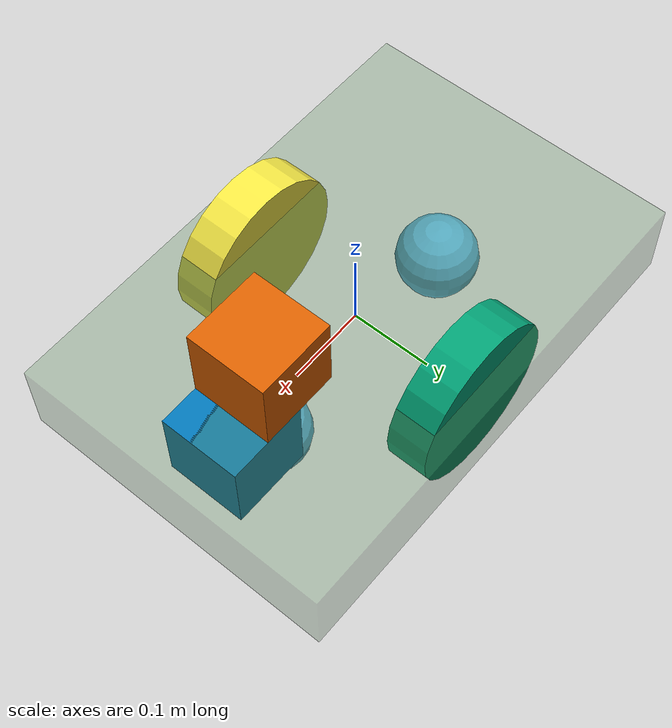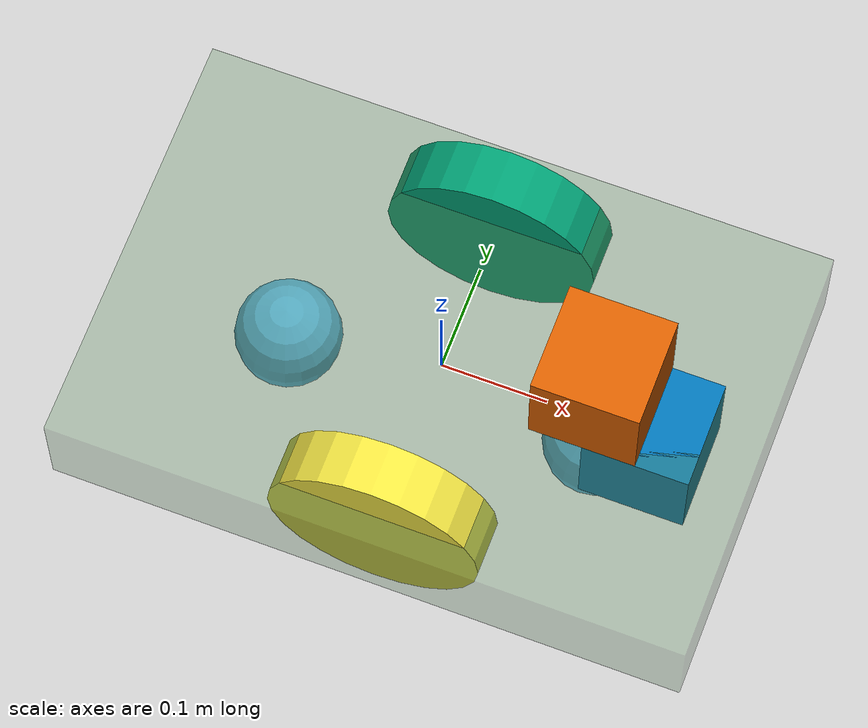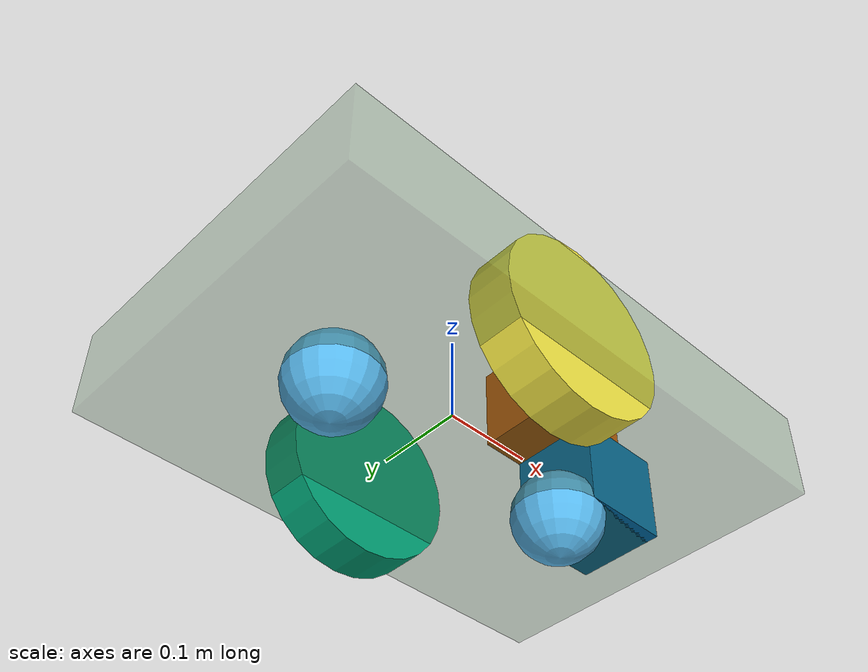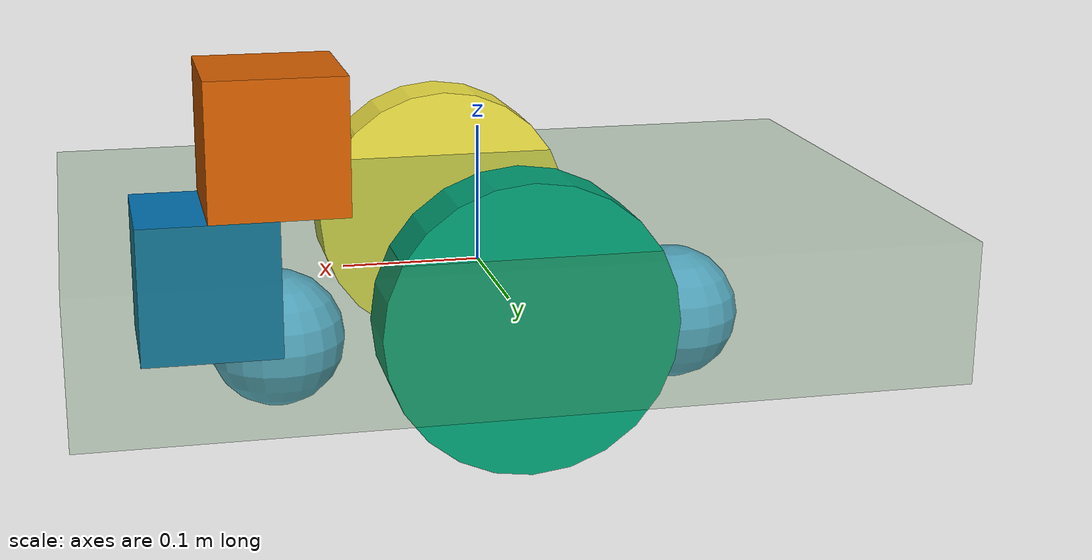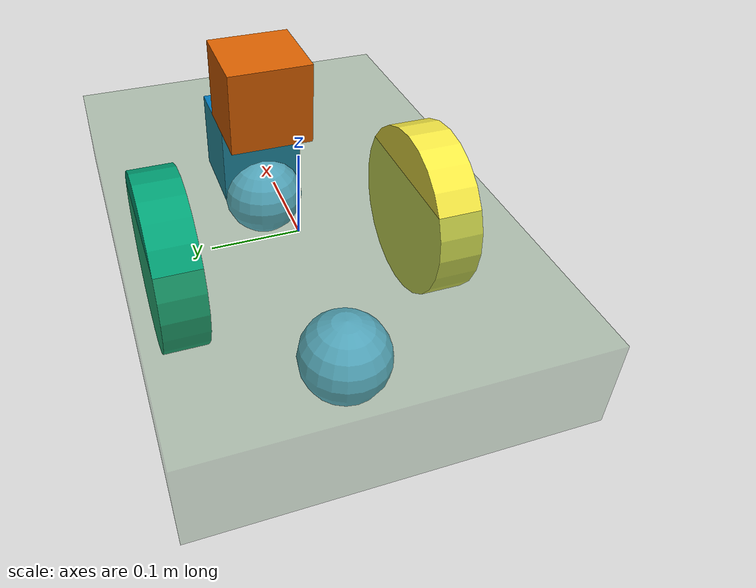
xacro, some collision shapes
<?xml version="1.0"?>

<robot name="my_robot" xmlns:xacro="http://www.ros.org/wiki/xacro">

  <xacro:include filename="$(find my_robot)/urdf/my_robot.gazebo"/>

  <link name="robot_footprint"></link>

  <joint name="robot_footprint_joint" type="fixed">
    <origin xyz="0 0 0" rpy="0 0 0" />
    <parent link="robot_footprint"/>
    <child link="chassis" />
  </joint>

  <link name='chassis'>
    <pose>0 0 0.1 0 0 0</pose>

    <inertial>
    <mass value="20.0"/>
      <origin xyz="0 0 0" rpy="0 0 0"/>
      <inertia
        ixx="0.1" ixy="0" ixz="0"
        iyy="0.1" iyz="0"
        izz="0.1"
      />
    </inertial>

    <collision name='collision'>
      <origin xyz="0 0 0" rpy="0 0 0"/>
      <geometry>
        <box size=".6 .4 .1"/>
      </geometry>
    </collision>

    <visual name='chassis_visual'>
      <origin xyz="0 0 0" rpy="0 0 0"/>
      <geometry>
        <box size=".6 .4 .1"/>
      </geometry>
      <material name='chassis_color'>
  	<color rgba="0.3 .5 0.3 0.3"/>
      </material>
    </visual>

    <collision name='back_caster_collision'>
      <origin xyz="-0.15 0 -0.05" rpy="0 0 0"/>
      <geometry>
        <sphere radius="0.0499"/>
      </geometry>
    </collision>

    <visual name='back_caster_visual'>
      <origin xyz="-0.15 0 -0.05" rpy="0 0 0"/>
      <geometry>
        <sphere radius="0.05"/>
      </geometry>
    </visual>

    <collision name='front_caster_collision'>
      <origin xyz="0.15 0 -0.05" rpy="0 0 0"/>
      <geometry>
        <sphere radius="0.0499"/>
      </geometry>
    </collision>

    <visual name='front_caster_visual'>
      <origin xyz="0.15 0 -0.05" rpy="0 0 0"/>
      <geometry>
        <sphere radius="0.05"/>
      </geometry>
    </visual>

  </link>

  <link name="left_wheel">
    <pose>0 0 0.1 0 0 0</pose>

    <inertial>
      <mass value="5"/>
      <origin xyz="0 0 0" rpy="0 1.5707 1.5707"/>
      <inertia
        ixx="0.1" ixy="0" ixz="0"
        iyy="0.1" iyz="0"
        izz="0.1"
      />
    </inertial>

    <visual name="left_wheel_visual">
      <origin xyz="0 0 0" rpy="0 1.5707 1.5707"/>
      <geometry>
        <cylinder radius="0.1" length="0.05"/>
      </geometry>
    </visual>

    <collision name="left_wheel_collision">
      <origin xyz="0 0 0" rpy="0 1.5707 1.5707"/>
      <geometry>
        <cylinder radius="0.1" length="0.05"/>
      </geometry>
    </collision>
  </link>

  <link name="right_wheel">
    <pose>0 0 -0.1 0 0 0</pose>

    <inertial>
      <mass value="5"/>
      <origin xyz="0 0 0" rpy="0 1.5707 1.5707"/>
      <inertia
        ixx="0.1" ixy="0" ixz="0"
        iyy="0.1" iyz="0"
        izz="0.1"
      />
    </inertial>

    <visual name="right_wheel_visual">
      <origin xyz="0 0 0" rpy="0 1.5707 1.5707"/>
      <geometry>
        <cylinder radius="0.1" length="0.05"/>
      </geometry>
    </visual>

    <collision name="right_wheel_collision">
      <orgin xyz="0 0 0 " rpy="0 1.5707 1.5707"/>
      <geometry>
        <cylinder radius="0.1" length="0.05"/>
      </geometry>
    </collision>
  </link>

  <joint type="continuous" name="left_wheel_hinge">
    <origin xyz="0 0.15 0" rpy="0 0 0"/>
    <child link="left_wheel"/>
    <parent link="chassis"/>
    <axis xyz="0 1 0" rpy="0 0 0"/>
    <limit effort="10000" velocity="1000"/>
    <dynamics damping="1.0" friction="1.0"/>
  </joint>

  <joint type="continuous" name="right_wheel_hinge">
    <origin xyz="0 -0.15 0" rpy="0 0 0"/>
    <child link="right_wheel"/>
    <parent link="chassis"/>
    <axis xyz="0 1 0" rpy="0 0 0"/>
    <limit effort="10000" velocity="1000"/>
    <dynamics damping="1.0" friction="1.0"/>
  </joint>

  <link name="camera">

    <inertial>
      <mass value="0.1"/>
      <origin xyz="0 0 0" rpy="0 0 0"/>
      <inertia
        ixx="1e-6" ixy="0" ixz="0"
        iyy="1e-6" iyz="0"
        izz="1e-6"
      />
    </inertial>

    <collision name='camera_collision'>
      <origin xyz="0 0 0" rpy="0 0 0"/>
      <geometry>
        <box size="0.1 0.1 0.1"/>
      </geometry>
      <box_inertia m="0.1" x="0.05" y="0.05" z="0.05"/>
    </collision>

    <visual name='camera_visual'>
      <origin xyz="0 0 0" rpy="0 0 0"/>
      <geometry>
        <box size="0.1 0.1 0.1"/>
      </geometry>
      <box_inertia m="0.1" x="0.05" y="0.05" z="0.05"/>
    </visual>

  </link>

  <joint type="fixed" name="camera_joint">
    <origin xyz="0.2 0 0" rpy="0 0 0"/>
    <child link="camera"/>
    <parent link="chassis"/>
    <axis xyz="0 1 0"/>
  </joint>

  <link name="hokuyo">

    <inertial>
      <mass value="1e-5"/>
      <origin xyz="0 0 0" rpy="0 0 0"/>
      <inertia
        ixx="1e-6" ixy="0" ixz="0"
        iyy="1e-6" iyz="0"
        izz="1e-6"
      />
    </inertial>

    <collision name='hokuyo_collision'>
      <origin xyz="0 0 0" rpy="0 0 0"/>
      <geometry>
        <box size="0.1 0.1 0.1"/>
      </geometry>
    </collision>

    <visual name='hokuyo_visual'>
      <origin xyz="0 0 0" rpy="0 0 0"/>
      <geometry>
        <mesh filename="package://my_robot/meshes/hokuyo.dae"/>
      </geometry>
    </visual>

  </link>

  <joint type="fixed" name="hokuyo_joint">
    <origin xyz="0.15 0 0.1" rpy="0 0 0"/>
    <child link="hokuyo"/>
    <parent link="chassis"/>
    <axis xyz="0 1 0" rpy="0 0 0"/>
  </joint>

</robot>
